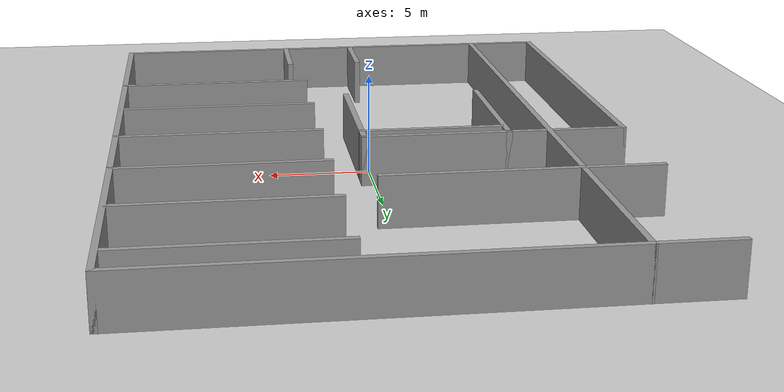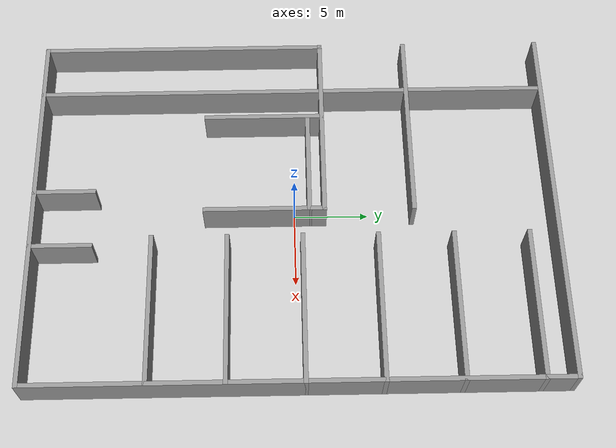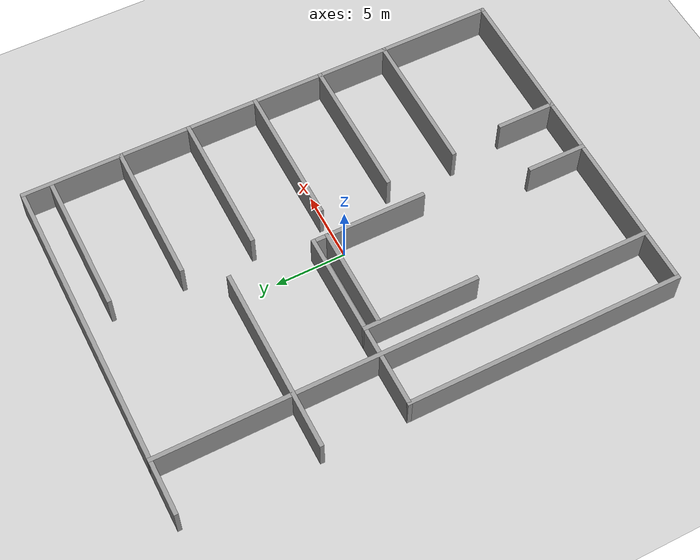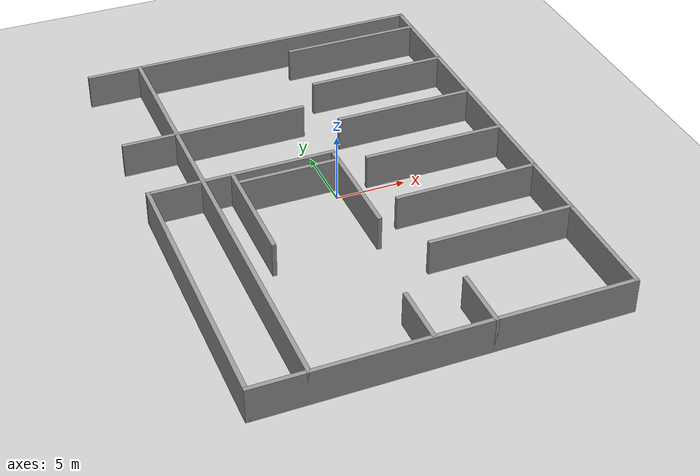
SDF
<sdf version="1.6">
 <world name="default">
  <light name="sun" type="directional">
   <pose>0 0 10 0 -0 0</pose>
   <diffuse>0.8 0.8 0.8 1</diffuse>
   <specular>0.2 0.2 0.2 1</specular>
   <attenuation>
    <range>1000</range>
    <constant>0.9</constant>
    <linear>0.01</linear>
    <quadratic>0.001</quadratic>
   </attenuation>
   <direction>-0.5 0.1 -0.9</direction>
  </light>
  <model name="ground_plane">
   <static>1</static>
   <link name="link">
    <collision name="collision">
     <geometry><plane><normal>0 0 1</normal><size>100 100</size></plane></geometry>
     <surface>
      <contact><collide_bitmask>65535</collide_bitmask></contact>
      <friction><ode><mu>100</mu><mu2>50</mu2></ode></friction>
     </surface>
    </collision>
    <visual name="visual">
     <cast_shadows>0</cast_shadows>
     <geometry><plane><normal>0 0 1</normal><size>100 100</size></plane></geometry>
     <material>
      <script><uri>file://media/materials/scripts/gazebo.material</uri><name>Gazebo/Grey</name></script>
     </material>
    </visual>
   </link>
  </model>
  <gravity>0 0 -9.8</gravity>
  <magnetic_field>6e-06 2.3e-05 -4.2e-05</magnetic_field>
  <atmosphere type="adiabatic"/>
  <physics name="default_physics" default="0" type="ode">
   <max_step_size>0.001</max_step_size>
   <real_time_factor>1</real_time_factor>
   <real_time_update_rate>1000</real_time_update_rate>
  </physics>
  <scene><ambient>0.4 0.4 0.4 1</ambient><background>0.7 0.7 0.7 1</background><shadows>1</shadows></scene>
  <audio><device>default</device></audio>
  <spherical_coordinates>
   <surface_model>EARTH_WGS84</surface_model>
   <latitude_deg>0</latitude_deg>
   <longitude_deg>0</longitude_deg>
   <elevation>0</elevation>
   <heading_deg>0</heading_deg>
  </spherical_coordinates>
  <model name="wall_35_03">
   <pose>-8.75 0 0 0 -0 0</pose>
   <link name="Wall_2">
    <collision name="Wall_2_Collision">
     <geometry><box><size>35.3 0.3 2.5</size></box></geometry>
     <pose>0 0 1.25 0 -0 0</pose>
    </collision>
    <visual name="Wall_2_Visual">
     <pose>0 0 1.25 0 -0 0</pose>
     <geometry><box><size>35.3 0.3 2.5</size></box></geometry>
     <material>
      <script><uri>file://media/materials/scripts/gazebo.material</uri><name>Gazebo/Grey</name></script>
      <ambient>1 1 1 1</ambient>
     </material>
     <meta><layer>0</layer></meta>
    </visual>
    <pose>0 0 0 0 -0 1.5708</pose>
   </link>
   <static>1</static>
  </model>
  <model name="wall_25_03">
   <pose>0 17.5 0 0 -0 0</pose>
   <link name="Wall_4">
    <collision name="Wall_4_Collision">
     <geometry><box><size>25.3 0.3 2.5</size></box></geometry>
     <pose>0 0 1.25 0 -0 0</pose>
    </collision>
    <visual name="Wall_4_Visual">
     <pose>0 0 1.25 0 -0 0</pose>
     <geometry><box><size>25.3 0.3 2.5</size></box></geometry>
     <material>
      <script><uri>file://media/materials/scripts/gazebo.material</uri><name>Gazebo/Grey</name></script>
      <ambient>1 1 1 1</ambient>
     </material>
     <meta><layer>0</layer></meta>
    </visual>
   </link>
   <static>1</static>
  </model>
  <model name="wall_25_03_clone">
   <pose>0 -17.5 0 0 -0 0</pose>
   <link name="Wall_4">
    <collision name="Wall_4_Collision">
     <geometry><box><size>25.3 0.3 2.5</size></box></geometry>
     <pose>0 0 1.25 0 -0 0</pose>
    </collision>
    <visual name="Wall_4_Visual">
     <pose>0 0 1.25 0 -0 0</pose>
     <geometry><box><size>25.3 0.3 2.5</size></box></geometry>
     <material>
      <script><uri>file://media/materials/scripts/gazebo.material</uri><name>Gazebo/Grey</name></script>
      <ambient>1 1 1 1</ambient>
     </material>
     <meta><layer>0</layer></meta>
    </visual>
   </link>
   <static>1</static>
  </model>
  <model name="wall_35_03_clone">
   <pose>12.5 0 0 0 -0 0</pose>
   <link name="Wall_2">
    <collision name="Wall_2_Collision">
     <geometry><box><size>35.3 0.3 2.5</size></box></geometry>
     <pose>0 0 1.25 0 -0 0</pose>
    </collision>
    <visual name="Wall_2_Visual">
     <pose>0 0 1.25 0 -0 0</pose>
     <geometry><box><size>35.3 0.3 2.5</size></box></geometry>
     <material>
      <script><uri>file://media/materials/scripts/gazebo.material</uri><name>Gazebo/Grey</name></script>
      <ambient>1 1 1 1</ambient>
     </material>
     <meta><layer>0</layer></meta>
    </visual>
    <pose>0 0 0 0 -0 1.5708</pose>
   </link>
   <static>1</static>
  </model>
  <model name="wall_10_03">
   <pose>7.5 10.5 0 0 -0 0</pose>
   <link name="Wall_6">
    <collision name="Wall_6_Collision">
     <geometry><box><size>10.3 0.3 2.5</size></box></geometry>
     <pose>0 0 1.25 0 -0 0</pose>
    </collision>
    <visual name="Wall_6_Visual">
     <pose>0 0 1.25 0 -0 0</pose>
     <geometry><box><size>10.3 0.3 2.5</size></box></geometry>
     <material>
      <script><uri>file://media/materials/scripts/gazebo.material</uri><name>Gazebo/Grey</name></script>
      <ambient>1 1 1 1</ambient>
     </material>
     <meta><layer>0</layer></meta>
    </visual>
   </link>
   <static>1</static>
  </model>
  <model name="wall_10_03_clone">
   <pose>7.5 5.5 0 0 -0 0</pose>
   <link name="Wall_6">
    <collision name="Wall_6_Collision">
     <geometry><box><size>10.3 0.3 2.5</size></box></geometry>
     <pose>0 0 1.25 0 -0 0</pose>
    </collision>
    <visual name="Wall_6_Visual">
     <pose>0 0 1.25 0 -0 0</pose>
     <geometry><box><size>10.3 0.3 2.5</size></box></geometry>
     <material>
      <script><uri>file://media/materials/scripts/gazebo.material</uri><name>Gazebo/Grey</name></script>
      <ambient>1 1 1 1</ambient>
     </material>
     <meta><layer>0</layer></meta>
    </visual>
   </link>
   <static>1</static>
  </model>
  <model name="wall_10_03_clone_0">
   <pose>7.5 0.5 0 0 -0 0</pose>
   <link name="Wall_6">
    <collision name="Wall_6_Collision">
     <geometry><box><size>10.3 0.3 2.5</size></box></geometry>
     <pose>0 0 1.25 0 -0 0</pose>
    </collision>
    <visual name="Wall_6_Visual">
     <pose>0 0 1.25 0 -0 0</pose>
     <geometry><box><size>10.3 0.3 2.5</size></box></geometry>
     <material>
      <script><uri>file://media/materials/scripts/gazebo.material</uri><name>Gazebo/Grey</name></script>
      <ambient>1 1 1 1</ambient>
     </material>
     <meta><layer>0</layer></meta>
    </visual>
   </link>
   <static>1</static>
  </model>
  <model name="wall_10_03_clone_1">
   <pose>7.5 -9.5 0 0 -0 0</pose>
   <link name="Wall_6">
    <collision name="Wall_6_Collision">
     <geometry><box><size>10.3 0.3 2.5</size></box></geometry>
     <pose>0 0 1.25 0 -0 0</pose>
    </collision>
    <visual name="Wall_6_Visual">
     <pose>0 0 1.25 0 -0 0</pose>
     <geometry><box><size>10.3 0.3 2.5</size></box></geometry>
     <material>
      <script><uri>file://media/materials/scripts/gazebo.material</uri><name>Gazebo/Grey</name></script>
      <ambient>1 1 1 1</ambient>
     </material>
     <meta><layer>0</layer></meta>
    </visual>
   </link>
   <static>1</static>
  </model>
  <model name="wall_13_03">
   <pose>-6 2 0 0 -0 0</pose>
   <link name="Wall_10">
    <collision name="Wall_10_Collision">
     <geometry><box><size>13.3 0.3 2.5</size></box></geometry>
     <pose>0 0 1.25 0 -0 0</pose>
    </collision>
    <visual name="Wall_10_Visual">
     <pose>0 0 1.25 0 -0 0</pose>
     <geometry><box><size>13.3 0.3 2.5</size></box></geometry>
     <material>
      <script><uri>file://media/materials/scripts/gazebo.material</uri><name>Gazebo/Grey</name></script>
      <ambient>1 1 1 1</ambient>
     </material>
     <meta><layer>0</layer></meta>
    </visual>
   </link>
   <static>1</static>
  </model>
  <model name="wall_13_03_clone">
   <pose>-6 8 0 0 -0 0</pose>
   <link name="Wall_10">
    <collision name="Wall_10_Collision">
     <geometry><box><size>13.3 0.3 2.5</size></box></geometry>
     <pose>0 0 1.25 0 -0 0</pose>
    </collision>
    <visual name="Wall_10_Visual">
     <pose>0 0 1.25 0 -0 0</pose>
     <geometry><box><size>13.3 0.3 2.5</size></box></geometry>
     <material>
      <script><uri>file://media/materials/scripts/gazebo.material</uri><name>Gazebo/Grey</name></script>
      <ambient>1 1 1 1</ambient>
     </material>
     <meta><layer>0</layer></meta>
    </visual>
   </link>
   <static>1</static>
  </model>
  <model name="wall_7_03_clone_0">
   <pose>-3 1 0 0 -0 1.57</pose>
   <link name="Wall_12">
    <collision name="Wall_12_Collision">
     <geometry><box><size>7.3 0.3 2.5</size></box></geometry>
     <pose>0 0 1.25 0 -0 0</pose>
    </collision>
    <visual name="Wall_12_Visual">
     <pose>0 0 1.25 0 -0 0</pose>
     <geometry><box><size>7.3 0.3 2.5</size></box></geometry>
     <material>
      <script><uri>file://media/materials/scripts/gazebo.material</uri><name>Gazebo/Grey</name></script>
      <ambient>1 1 1 1</ambient>
     </material>
     <meta><layer>0</layer></meta>
    </visual>
    <pose>0 0 0 0 -0 -1.5708</pose>
   </link>
   <static>1</static>
  </model>
  <model name="wall_8_03_clone">
   <pose>-6.7 -2 0 0 -0 0</pose>
   <link name="Wall_16">
    <collision name="Wall_16_Collision">
     <geometry><box><size>8.3 0.3 2.5</size></box></geometry>
     <pose>0 0 1.25 0 -0 0</pose>
    </collision>
    <visual name="Wall_16_Visual">
     <pose>0 0 1.25 0 -0 0</pose>
     <geometry><box><size>8.3 0.3 2.5</size></box></geometry>
     <material>
      <script><uri>file://media/materials/scripts/gazebo.material</uri><name>Gazebo/Grey</name></script>
      <ambient>1 1 1 1</ambient>
     </material>
     <meta><layer>0</layer></meta>
    </visual>
    <pose>0 0 0 0 -0 -1.5708</pose>
   </link>
   <static>1</static>
  </model>
  <model name="wall_8_03_clone_clone">
   <pose>0.5 -2 0 0 -0 0</pose>
   <link name="Wall_16">
    <collision name="Wall_16_Collision">
     <geometry><box><size>8.3 0.3 2.5</size></box></geometry>
     <pose>0 0 1.25 0 -0 0</pose>
    </collision>
    <visual name="Wall_16_Visual">
     <pose>0 0 1.25 0 -0 0</pose>
     <geometry><box><size>8.3 0.3 2.5</size></box></geometry>
     <material>
      <script><uri>file://media/materials/scripts/gazebo.material</uri><name>Gazebo/Grey</name></script>
      <ambient>1 1 1 1</ambient>
     </material>
     <meta><layer>0</layer></meta>
    </visual>
    <pose>0 0 0 0 -0 -1.5708</pose>
   </link>
   <static>1</static>
  </model>
  <model name="wall_19_03">
   <pose>-12.5 -7.75 0 0 -0 0</pose>
   <link name="Wall_18">
    <collision name="Wall_18_Collision">
     <geometry><box><size>19.8 0.3 2.5</size></box></geometry>
     <pose>0 0 1.25 0 -0 0</pose>
    </collision>
    <visual name="Wall_18_Visual">
     <pose>0 0 1.25 0 -0 0</pose>
     <geometry><box><size>19.8 0.3 2.5</size></box></geometry>
     <material>
      <script><uri>file://media/materials/scripts/gazebo.material</uri><name>Gazebo/Grey</name></script>
      <ambient>1 1 1 1</ambient>
     </material>
     <meta><layer>0</layer></meta>
    </visual>
    <pose>0 0 0 0 -0 -1.5708</pose>
   </link>
   <static>1</static>
  </model>
  <model name="wall_10_03_clone_2">
   <pose>7.5 15.5 0 0 -0 0</pose>
   <link name="Wall_6">
    <collision name="Wall_6_Collision">
     <geometry><box><size>10.3 0.3 2.5</size></box></geometry>
     <pose>0 0 1.25 0 -0 0</pose>
    </collision>
    <visual name="Wall_6_Visual">
     <pose>0 0 1.25 0 -0 0</pose>
     <geometry><box><size>10.3 0.3 2.5</size></box></geometry>
     <material>
      <script><uri>file://media/materials/scripts/gazebo.material</uri><name>Gazebo/Grey</name></script>
      <ambient>1 1 1 1</ambient>
     </material>
     <meta><layer>0</layer></meta>
    </visual>
   </link>
   <static>1</static>
  </model>
  <model name="wall_10_03_clone_1_clone">
   <pose>7.5 -4.5 0 0 -0 0</pose>
   <link name="Wall_6">
    <collision name="Wall_6_Collision">
     <geometry><box><size>10.3 0.3 2.5</size></box></geometry>
     <pose>0 0 1.25 0 -0 0</pose>
    </collision>
    <visual name="Wall_6_Visual">
     <pose>0 0 1.25 0 -0 0</pose>
     <geometry><box><size>10.3 0.3 2.5</size></box></geometry>
     <material>
      <script><uri>file://media/materials/scripts/gazebo.material</uri><name>Gazebo/Grey</name></script>
      <ambient>1 1 1 1</ambient>
     </material>
     <meta><layer>0</layer></meta>
    </visual>
   </link>
   <static>1</static>
  </model>
  <model name="wall_4_03">
   <pose>-1 -15.5 0 0 -0 0</pose>
   <link name="Wall_14">
    <collision name="Wall_14_Collision">
     <geometry><box><size>4.3 0.3 2.5</size></box></geometry>
     <pose>0 0 1.25 0 -0 0</pose>
    </collision>
    <visual name="Wall_14_Visual">
     <pose>0 0 1.25 0 -0 0</pose>
     <geometry><box><size>4.3 0.3 2.5</size></box></geometry>
     <material>
      <script><uri>file://media/materials/scripts/gazebo.material</uri><name>Gazebo/Grey</name></script>
      <ambient>1 1 1 1</ambient>
     </material>
     <meta><layer>0</layer></meta>
    </visual>
    <pose>0 0 0 0 -0 -1.5708</pose>
   </link>
   <static>1</static>
  </model>
  <model name="wall_4_03_clone">
   <pose>3 -15.5 0 0 -0 0</pose>
   <link name="Wall_14">
    <collision name="Wall_14_Collision">
     <geometry><box><size>4.3 0.3 2.5</size></box></geometry>
     <pose>0 0 1.25 0 -0 0</pose>
    </collision>
    <visual name="Wall_14_Visual">
     <pose>0 0 1.25 0 -0 0</pose>
     <geometry><box><size>4.3 0.3 2.5</size></box></geometry>
     <material>
      <script><uri>file://media/materials/scripts/gazebo.material</uri><name>Gazebo/Grey</name></script>
      <ambient>1 1 1 1</ambient>
     </material>
     <meta><layer>0</layer></meta>
    </visual>
    <pose>0 0 0 0 -0 -1.5708</pose>
   </link>
   <static>1</static>
  </model>
 </world>
</sdf>
